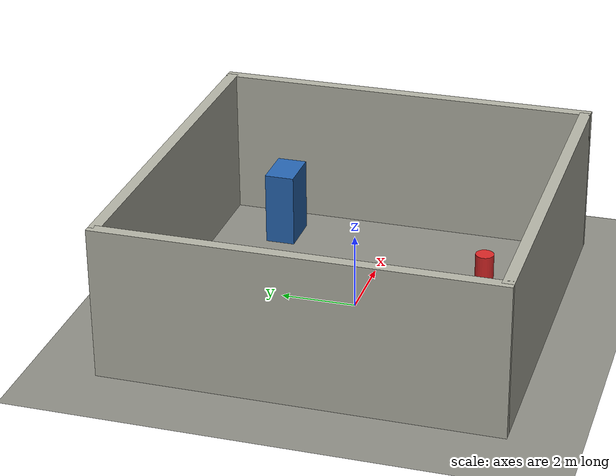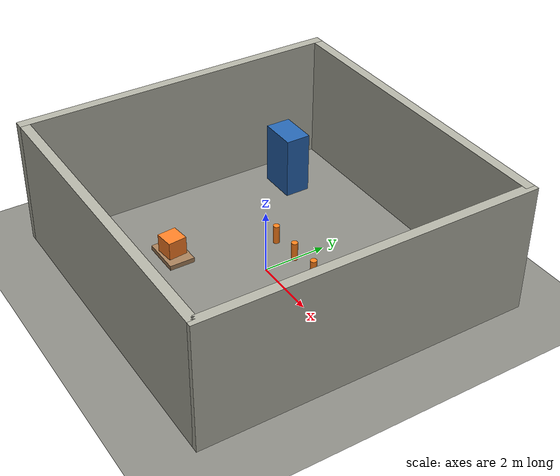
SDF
<?xml version="1.0" ?>
<sdf version="1.8">
  <world name="industrial_warehouse">
    <physics name="1ms" type="ignored">
      <max_step_size>0.001</max_step_size>
      <real_time_factor>1.0</real_time_factor>
    </physics>
    <plugin filename="gz-sim-physics-system" name="gz::sim::systems::Physics">
    </plugin>
    <plugin filename="gz-sim-user-commands-system" name="gz::sim::systems::UserCommands">
    </plugin>
    <plugin filename="gz-sim-scene-broadcaster-system" name="gz::sim::systems::SceneBroadcaster">
    </plugin>
    <plugin filename="gz-sim-sensors-system" name="gz::sim::systems::Sensors">
      <render_engine>ogre2</render_engine>
    </plugin>

    <!-- Industrial Lighting -->
    <light type="directional" name="warehouse_light_main">
      <cast_shadows>true</cast_shadows>
      <pose>0 0 10 0 0 0</pose>
      <diffuse>0.9 0.9 0.85 1</diffuse>
      <specular>0.3 0.3 0.3 1</specular>
      <attenuation>
        <range>1000</range>
        <constant>0.9</constant>
        <linear>0.01</linear>
        <quadratic>0.001</quadratic>
      </attenuation>
      <direction>-0.3 0.2 -0.9</direction>
    </light>

    <!-- CONCRETE FLOOR (Reduced to 15x15) -->
    <model name="warehouse_floor">
      <static>true</static>
      <link name="link">
        <collision name="collision">
          <geometry>
            <plane>
              <normal>0 0 1</normal>
              <size>15 15</size>
            </plane>
          </geometry>
        </collision>
        <visual name="visual">
          <geometry>
            <plane>
              <normal>0 0 1</normal>
              <size>15 15</size>
            </plane>
          </geometry>
          <material>
            <ambient>0.45 0.45 0.42 1</ambient>
            <diffuse>0.55 0.55 0.52 1</diffuse>
            <specular>0.1 0.1 0.1 1</specular>
          </material>
        </visual>
      </link>
    </model>

    <!-- WAREHOUSE WALLS (Reduced to 10x10 area) -->
    <!-- North Wall -->
    <model name="wall_north">
      <static>true</static>
      <pose>0 5 2 0 0 0</pose>
      <link name="link">
        <visual name="visual">
          <geometry>
            <box>
              <size>10 0.3 4</size>
            </box>
          </geometry>
          <material>
            <ambient>0.6 0.6 0.55 1</ambient>
            <diffuse>0.7 0.7 0.65 1</diffuse>
          </material>
        </visual>
        <collision name="collision">
          <geometry>
            <box>
              <size>10 0.3 4</size>
            </box>
          </geometry>
        </collision>
      </link>
    </model>

    <!-- South Wall -->
    <model name="wall_south">
      <static>true</static>
      <pose>0 -5 2 0 0 0</pose>
      <link name="link">
        <visual name="visual">
          <geometry>
            <box>
              <size>10 0.3 4</size>
            </box>
          </geometry>
          <material>
            <ambient>0.6 0.6 0.55 1</ambient>
            <diffuse>0.7 0.7 0.65 1</diffuse>
          </material>
        </visual>
        <collision name="collision">
          <geometry>
            <box>
              <size>10 0.3 4</size>
            </box>
          </geometry>
        </collision>
      </link>
    </model>

    <!-- East Wall -->
    <model name="wall_east">
      <static>true</static>
      <pose>5 0 2 0 0 0</pose>
      <link name="link">
        <visual name="visual">
          <geometry>
            <box>
              <size>0.3 10.3 4</size>
            </box>
          </geometry>
          <material>
            <ambient>0.6 0.6 0.55 1</ambient>
            <diffuse>0.7 0.7 0.65 1</diffuse>
          </material>
        </visual>
        <collision name="collision">
          <geometry>
            <box>
              <size>0.3 10.3 4</size>
            </box>
          </geometry>
        </collision>
      </link>
    </model>

    <!-- West Wall -->
    <model name="wall_west">
      <static>true</static>
      <pose>-5 0 2 0 0 0</pose>
      <link name="link">
        <visual name="visual">
          <geometry>
            <box>
              <size>0.3 10.3 4</size>
            </box>
          </geometry>
          <material>
            <ambient>0.6 0.6 0.55 1</ambient>
            <diffuse>0.7 0.7 0.65 1</diffuse>
          </material>
        </visual>
        <collision name="collision">
          <geometry>
            <box>
              <size>0.3 10.3 4</size>
            </box>
          </geometry>
        </collision>
      </link>
    </model>

    <!-- SHELVING UNITS - Reduced Number -->
    <model name="shelf_1">
      <static>true</static>
      <pose>-3.5 3 1 0 0 0</pose>
      <link name="link">
        <visual name="visual">
          <geometry><box><size>1.2 0.8 2</size></box></geometry>
          <material>
            <ambient>0.1 0.3 0.6 1</ambient>
            <diffuse>0.15 0.4 0.7 1</diffuse>
          </material>
        </visual>
        <collision name="collision">
          <geometry><box><size>1.2 0.8 2</size></box></geometry>
        </collision>
      </link>
    </model>

    <model name="shelf_2">
      <static>true</static>
      <pose>3.5 3 1 0 0 0</pose>
      <link name="link">
        <visual name="visual">
          <geometry><box><size>1.2 0.8 2</size></box></geometry>
          <material>
            <ambient>0.1 0.3 0.6 1</ambient>
            <diffuse>0.15 0.4 0.7 1</diffuse>
          </material>
        </visual>
        <collision name="collision">
          <geometry><box><size>1.2 0.8 2</size></box></geometry>
        </collision>
      </link>
    </model>

    <!-- OBSTACLES (Tighter Cluster) -->
    <model name="pallet_1">
      <static>true</static>
      <pose>-2 -2 0.1 0 0 0</pose>
      <link name="link">
        <visual name="visual">
          <geometry>
            <box><size>1.2 0.8 0.15</size></box>
          </geometry>
          <material>
            <ambient>0.55 0.4 0.25 1</ambient>
            <diffuse>0.65 0.5 0.35 1</diffuse>
          </material>
        </visual>
        <collision name="collision">
          <geometry>
            <box><size>1.2 0.8 0.15</size></box>
          </geometry>
        </collision>
      </link>
    </model>

    <model name="crate_orange">
      <static>true</static>
      <pose>-2 -2 0.45 0 0 0.1</pose>
      <link name="link">
        <visual name="visual">
          <geometry><box><size>0.6 0.6 0.6</size></box></geometry>
          <material>
            <ambient>0.9 0.4 0.1 1</ambient>
            <diffuse>1.0 0.5 0.15 1</diffuse>
          </material>
        </visual>
        <collision name="collision">
          <geometry><box><size>0.6 0.6 0.6</size></box></geometry>
        </collision>
      </link>
    </model>

    <model name="barrel_red">
      <static>true</static>
      <pose>2 -3 0.5 0 0 0</pose>
      <link name="link">
        <visual name="visual">
          <geometry>
            <cylinder><radius>0.25</radius><length>0.9</length></cylinder>
          </geometry>
          <material>
            <ambient>0.7 0.1 0.1 1</ambient>
            <diffuse>0.85 0.15 0.15 1</diffuse>
          </material>
        </visual>
        <collision name="collision">
          <geometry>
            <cylinder><radius>0.25</radius><length>0.9</length></cylinder>
          </geometry>
        </collision>
      </link>
    </model>

    <model name="pylon_1">
      <static>true</static>
      <pose>0 1 0.3 0 0 0</pose>
      <link name="link">
        <visual name="visual">
          <geometry>
            <cylinder><radius>0.1</radius><length>0.6</length></cylinder>
          </geometry>
          <material>
            <ambient>1 0.4 0 1</ambient>
            <diffuse>1 0.5 0.1 1</diffuse>
          </material>
        </visual>
        <collision name="collision">
          <geometry>
            <cylinder><radius>0.1</radius><length>0.6</length></cylinder>
          </geometry>
        </collision>
      </link>
    </model>

    <model name="pylon_2">
      <static>true</static>
      <pose>-1 1 0.3 0 0 0</pose>
      <link name="link">
        <visual name="visual">
          <geometry>
            <cylinder><radius>0.1</radius><length>0.6</length></cylinder>
          </geometry>
          <material>
            <ambient>1 0.4 0 1</ambient>
            <diffuse>1 0.5 0.1 1</diffuse>
          </material>
        </visual>
        <collision name="collision">
          <geometry>
            <cylinder><radius>0.1</radius><length>0.6</length></cylinder>
          </geometry>
        </collision>
      </link>
    </model>

    <model name="pylon_3">
      <static>true</static>
      <pose>1 1 0.3 0 0 0</pose>
      <link name="link">
        <visual name="visual">
          <geometry>
            <cylinder><radius>0.1</radius><length>0.6</length></cylinder>
          </geometry>
          <material>
            <ambient>1 0.4 0 1</ambient>
            <diffuse>1 0.5 0.1 1</diffuse>
          </material>
        </visual>
        <collision name="collision">
          <geometry>
            <cylinder><radius>0.1</radius><length>0.6</length></cylinder>
          </geometry>
        </collision>
      </link>
    </model>

  </world>
</sdf>
